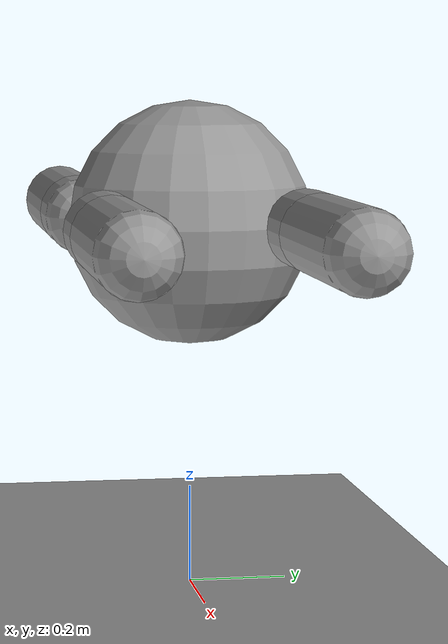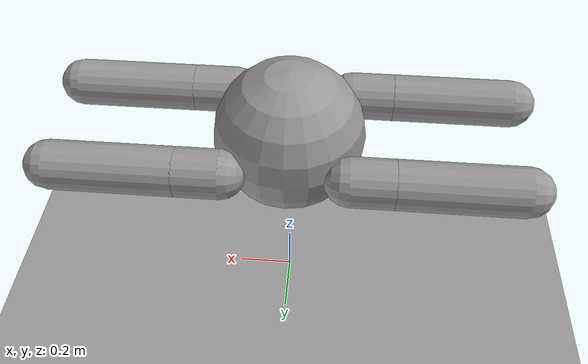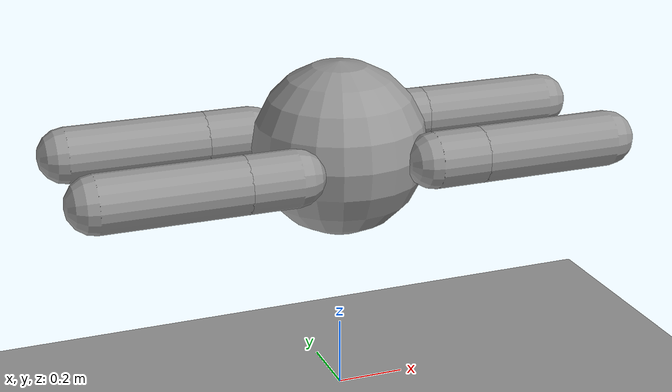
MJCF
<mujoco model="ant">
  <compiler angle="radian" autolimits="true"/>
  <option timestep="0.01" gravity="0 0 -9.81" integrator="RK4"/>

  <visual>
    <headlight ambient="0.3 0.3 0.3" diffuse="0.7 0.7 0.7"/>
    <rgba haze="0.2 0.25 0.3 1"/>
  </visual>

  <default>
    <joint limited="true" damping="1.0" armature="0.1"/>
    <geom condim="3" friction="1.0 0.05 0.05" rgba="0.6 0.6 0.6 1"
          solimp="0.9 0.95 0.001" solref="0.02 1"/>
    <motor ctrllimited="true" ctrlrange="-1 1" gear="150"/>
  </default>

  <asset>
    <texture type="skybox" builtin="gradient" rgb1="0.5 0.6 0.7" rgb2="0 0 0" width="512" height="3072"/>
    <texture name="ground_tex" type="2d" builtin="checker" rgb1="0.2 0.3 0.2" rgb2="0.12 0.18 0.12"
             width="256" height="256"/>
    <material name="ground_mat" texture="ground_tex" texrepeat="10 10"/>
    <material name="torso_mat"  rgba="0.8 0.5 0.1 1"/>
    <material name="hip_mat"    rgba="0.7 0.4 0.1 1"/>
    <material name="ankle_mat"  rgba="0.5 0.3 0.1 1"/>
  </asset>

  <worldbody>
    <light name="top"   pos="0 0 8"  dir="0 0 -1"  diffuse="0.6 0.6 0.6" castshadow="true"/>
    <light name="side1" pos="5 5 5"  dir="-1 -1 -1" diffuse="0.3 0.3 0.3"/>
    <geom name="floor"  type="plane" size="50 50 0.1" material="ground_mat"/>

    <!-- Root body (torso) -->
    <body name="torso" pos="0 0 0.75">
      <freejoint name="root"/>
      <geom name="torso_geom" type="sphere" size="0.25" material="torso_mat" mass="10.0"/>

      <!-- Front-Right Leg -->
      <body name="front_right_hip" pos="0.2 -0.2 0">
        <joint name="hip_1" type="hinge" axis="0 0 1" range="-0.523 0.523" damping="1.0"/>
        <geom name="aux_1" type="capsule" fromto="0 0 0  0.14 0 0" size="0.08" material="hip_mat" mass="0.5"/>
        <body name="front_right_foot" pos="0.14 0 0">
          <joint name="ankle_1" type="hinge" axis="-1 1 0" range="0.524 1.745" damping="1.0"/>
          <geom name="right_front_leg" type="capsule" fromto="0 0 0  0.4 0 0" size="0.08"
                material="ankle_mat" mass="0.5" friction="1.5 0.05 0.05"/>
        </body>
      </body>

      <!-- Front-Left Leg -->
      <body name="front_left_hip" pos="0.2 0.2 0">
        <joint name="hip_2" type="hinge" axis="0 0 1" range="-0.523 0.523" damping="1.0"/>
        <geom name="aux_2" type="capsule" fromto="0 0 0  0.14 0 0" size="0.08" material="hip_mat" mass="0.5"/>
        <body name="front_left_foot" pos="0.14 0 0">
          <joint name="ankle_2" type="hinge" axis="1 1 0" range="-1.745 -0.524" damping="1.0"/>
          <geom name="left_front_leg" type="capsule" fromto="0 0 0  0.4 0 0" size="0.08"
                material="ankle_mat" mass="0.5" friction="1.5 0.05 0.05"/>
        </body>
      </body>

      <!-- Back-Right Leg -->
      <body name="back_right_hip" pos="-0.2 -0.2 0">
        <joint name="hip_3" type="hinge" axis="0 0 1" range="-0.523 0.523" damping="1.0"/>
        <geom name="aux_3" type="capsule" fromto="0 0 0  -0.14 0 0" size="0.08" material="hip_mat" mass="0.5"/>
        <body name="back_right_foot" pos="-0.14 0 0">
          <joint name="ankle_3" type="hinge" axis="-1 1 0" range="-1.745 -0.524" damping="1.0"/>
          <geom name="right_back_leg" type="capsule" fromto="0 0 0  -0.4 0 0" size="0.08"
                material="ankle_mat" mass="0.5" friction="1.5 0.05 0.05"/>
        </body>
      </body>

      <!-- Back-Left Leg -->
      <body name="back_left_hip" pos="-0.2 0.2 0">
        <joint name="hip_4" type="hinge" axis="0 0 1" range="-0.523 0.523" damping="1.0"/>
        <geom name="aux_4" type="capsule" fromto="0 0 0  -0.14 0 0" size="0.08" material="hip_mat" mass="0.5"/>
        <body name="back_left_foot" pos="-0.14 0 0">
          <joint name="ankle_4" type="hinge" axis="1 1 0" range="0.524 1.745" damping="1.0"/>
          <geom name="left_back_leg" type="capsule" fromto="0 0 0  -0.4 0 0" size="0.08"
                material="ankle_mat" mass="0.5" friction="1.5 0.05 0.05"/>
        </body>
      </body>

    </body>
  </worldbody>

  <actuator>
    <motor name="hip_1_mot"   joint="hip_1"   gear="150"/>
    <motor name="ankle_1_mot" joint="ankle_1" gear="150"/>
    <motor name="hip_2_mot"   joint="hip_2"   gear="150"/>
    <motor name="ankle_2_mot" joint="ankle_2" gear="150"/>
    <motor name="hip_3_mot"   joint="hip_3"   gear="150"/>
    <motor name="ankle_3_mot" joint="ankle_3" gear="150"/>
    <motor name="hip_4_mot"   joint="hip_4"   gear="150"/>
    <motor name="ankle_4_mot" joint="ankle_4" gear="150"/>
  </actuator>

  <sensor>
    <jointpos name="hip1_pos"   joint="hip_1"/>
    <jointpos name="ankle1_pos" joint="ankle_1"/>
    <jointpos name="hip2_pos"   joint="hip_2"/>
    <jointpos name="ankle2_pos" joint="ankle_2"/>
    <jointpos name="hip3_pos"   joint="hip_3"/>
    <jointpos name="ankle3_pos" joint="ankle_3"/>
    <jointpos name="hip4_pos"   joint="hip_4"/>
    <jointpos name="ankle4_pos" joint="ankle_4"/>
    <framepos name="torso_pos"  objtype="body" objname="torso"/>
    <framequat name="torso_quat" objtype="body" objname="torso"/>
  </sensor>
</mujoco>
